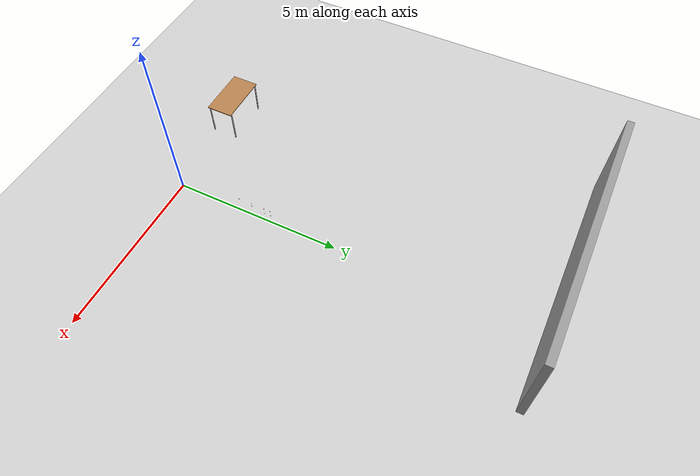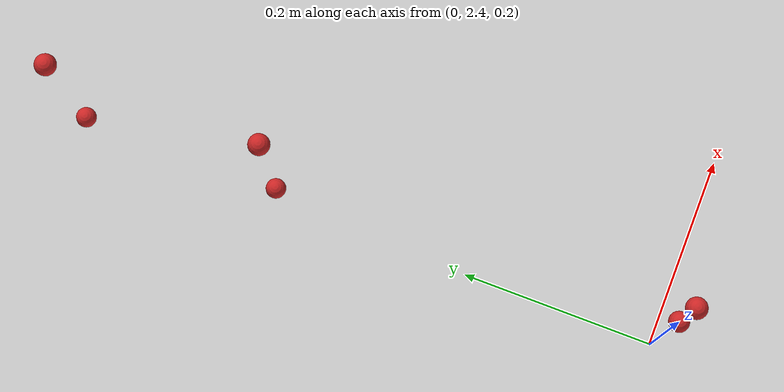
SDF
<sdf version="1.4">
 <world name="default">
  <light name="sun" type="directional">
   <pose>0 0 10 0 -0 0</pose>
   <diffuse>0.8 0.8 0.8 1</diffuse>
   <specular>0.2 0.2 0.2 1</specular>
   <attenuation>
    <range>1000</range>
    <constant>0.9</constant>
    <linear>0.01</linear>
    <quadratic>0.001</quadratic>
   </attenuation>
   <direction>-0.5 0.1 -0.9</direction>
  </light>
  <model name="ground_plane">
   <static>1</static>
   <link name="link">
    <collision name="collision">
     <geometry><plane><normal>0 0 1</normal><size>100 100</size></plane></geometry>
     <surface><friction><ode><mu>100</mu><mu2>50</mu2></ode></friction></surface>
    </collision>
    <visual name="visual">
     <cast_shadows>0</cast_shadows>
     <geometry><plane><normal>0 0 1</normal><size>100 100</size></plane></geometry>
     <material>
      <script><uri>file://media/materials/scripts/gazebo.material</uri><name>Gazebo/Grey</name></script>
     </material>
    </visual>
    <velocity_decay><linear>0</linear><angular>0</angular></velocity_decay>
   </link>
  </model>
  <physics type="ode">
   <max_step_size>0.001</max_step_size>
   <real_time_factor>1</real_time_factor>
   <real_time_update_rate>1000</real_time_update_rate>
   <gravity>0 0 -9.8</gravity>
  </physics>
  <scene><ambient>0.4 0.4 0.4 1</ambient><background>0.7 0.7 0.7 1</background><shadows>1</shadows></scene>
  <spherical_coordinates>
   <surface_model>EARTH_WGS84</surface_model>
   <latitude_deg>0</latitude_deg>
   <longitude_deg>0</longitude_deg>
   <elevation>0</elevation>
   <heading_deg>0</heading_deg>
  </spherical_coordinates>
  <model name="apple">
   <link name="base_link">
    <inertial>
     <mass>1</mass>
     <inertia><ixx>1</ixx><ixy>0</ixy><ixz>0</ixz><iyy>1</iyy><iyz>0</iyz><izz>1</izz></inertia>
    </inertial>
    <collision name="base_link_collision"><geometry><sphere><radius>0.01</radius></sphere></geometry></collision>
    <visual name="base_link_visual">
     <geometry><sphere><radius>0.01</radius></sphere></geometry>
     <material><script><name>Gazebo/Red</name><uri>__default__</uri></script></material>
    </visual>
    <velocity_decay><linear>0</linear><angular>0</angular></velocity_decay>
    <gravity>0</gravity>
    <velocity_decay><linear>0</linear><angular>0</angular></velocity_decay>
   </link>
   <pose>0 3 0.5 0 -0 0</pose>
   <static>0</static>
  </model>
  <model name="apple2">
   <link name="base_link">
    <inertial>
     <mass>1</mass>
     <inertia><ixx>1</ixx><ixy>0</ixy><ixz>0</ixz><iyy>1</iyy><iyz>0</iyz><izz>1</izz></inertia>
    </inertial>
    <collision name="base_link_collision"><geometry><sphere><radius>0.01</radius></sphere></geometry></collision>
    <visual name="base_link_visual">
     <geometry><sphere><radius>0.01</radius></sphere></geometry>
     <material><script><name>Gazebo/Red</name><uri>__default__</uri></script></material>
    </visual>
    <velocity_decay><linear>0</linear><angular>0</angular></velocity_decay>
    <gravity>0</gravity>
    <velocity_decay><linear>0</linear><angular>0</angular></velocity_decay>
   </link>
   <pose>0 3 0.3 0 -0 0</pose>
   <static>0</static>
  </model>
  <model name="apple3">
   <link name="base_link">
    <inertial>
     <mass>1</mass>
     <inertia><ixx>1</ixx><ixy>0</ixy><ixz>0</ixz><iyy>1</iyy><iyz>0</iyz><izz>1</izz></inertia>
    </inertial>
    <collision name="base_link_collision"><geometry><sphere><radius>0.01</radius></sphere></geometry></collision>
    <visual name="base_link_visual">
     <geometry><sphere><radius>0.01</radius></sphere></geometry>
     <material><script><name>Gazebo/Red</name><uri>__default__</uri></script></material>
    </visual>
    <velocity_decay><linear>0</linear><angular>0</angular></velocity_decay>
    <gravity>0</gravity>
    <velocity_decay><linear>0</linear><angular>0</angular></velocity_decay>
   </link>
   <pose>0 2.8 0.3 0 -0 0</pose>
   <static>0</static>
  </model>
  <model name="apple4">
   <link name="base_link">
    <inertial>
     <mass>1</mass>
     <inertia><ixx>1</ixx><ixy>0</ixy><ixz>0</ixz><iyy>1</iyy><iyz>0</iyz><izz>1</izz></inertia>
    </inertial>
    <collision name="base_link_collision"><geometry><sphere><radius>0.01</radius></sphere></geometry></collision>
    <visual name="base_link_visual">
     <geometry><sphere><radius>0.01</radius></sphere></geometry>
     <material><script><name>Gazebo/Red</name><uri>__default__</uri></script></material>
    </visual>
    <velocity_decay><linear>0</linear><angular>0</angular></velocity_decay>
    <gravity>0</gravity>
    <velocity_decay><linear>0</linear><angular>0</angular></velocity_decay>
   </link>
   <pose>0 2.8 0.5 0 -0 0</pose>
   <static>0</static>
  </model>
  <model name="apple5">
   <link name="base_link">
    <inertial>
     <mass>1</mass>
     <inertia><ixx>1</ixx><ixy>0</ixy><ixz>0</ixz><iyy>1</iyy><iyz>0</iyz><izz>1</izz></inertia>
    </inertial>
    <collision name="base_link_collision"><geometry><sphere><radius>0.01</radius></sphere></geometry></collision>
    <visual name="base_link_visual">
     <geometry><sphere><radius>0.01</radius></sphere></geometry>
     <material><script><name>Gazebo/Red</name><uri>__default__</uri></script></material>
    </visual>
    <velocity_decay><linear>0</linear><angular>0</angular></velocity_decay>
    <gravity>0</gravity>
    <velocity_decay><linear>0</linear><angular>0</angular></velocity_decay>
   </link>
   <pose>0 2 0.5 0 -0 0</pose>
   <static>0</static>
  </model>
  <model name="apple6">
   <link name="base_link">
    <inertial>
     <mass>1</mass>
     <inertia><ixx>1</ixx><ixy>0</ixy><ixz>0</ixz><iyy>1</iyy><iyz>0</iyz><izz>1</izz></inertia>
    </inertial>
    <collision name="base_link_collision"><geometry><sphere><radius>0.01</radius></sphere></geometry></collision>
    <visual name="base_link_visual">
     <geometry><sphere><radius>0.01</radius></sphere></geometry>
     <material><script><name>Gazebo/Red</name><uri>__default__</uri></script></material>
    </visual>
    <velocity_decay><linear>0</linear><angular>0</angular></velocity_decay>
    <gravity>0</gravity>
    <velocity_decay><linear>0</linear><angular>0</angular></velocity_decay>
   </link>
   <pose>0 2.4 0.5 0 -0 0</pose>
   <static>0</static>
  </model>
  <model name="apple7">
   <link name="base_link">
    <inertial>
     <mass>1</mass>
     <inertia><ixx>1</ixx><ixy>0</ixy><ixz>0</ixz><iyy>1</iyy><iyz>0</iyz><izz>1</izz></inertia>
    </inertial>
    <collision name="base_link_collision"><geometry><sphere><radius>0.01</radius></sphere></geometry></collision>
    <visual name="base_link_visual">
     <geometry><sphere><radius>0.01</radius></sphere></geometry>
     <material><script><name>Gazebo/Red</name><uri>__default__</uri></script></material>
    </visual>
    <velocity_decay><linear>0</linear><angular>0</angular></velocity_decay>
    <gravity>0</gravity>
    <velocity_decay><linear>0</linear><angular>0</angular></velocity_decay>
   </link>
   <pose>0 2.4 0.4 0 -0 0</pose>
   <static>0</static>
  </model>
  <model name="table">
   <static>1</static>
   <link name="link">
    <collision name="surface">
     <pose>0 0 1 0 -0 0</pose>
     <geometry><box><size>1.5 0.8 0.03</size></box></geometry>
     <surface><friction><ode><mu>0.6</mu><mu2>0.6</mu2></ode></friction></surface>
    </collision>
    <visual name="visual1">
     <pose>0 0 1 0 -0 0</pose>
     <geometry><box><size>1.5 0.8 0.03</size></box></geometry>
     <material>
      <script><uri>file://media/materials/scripts/gazebo.material</uri><name>Gazebo/Wood</name></script>
     </material>
    </visual>
    <collision name="front_left_leg">
     <pose>0.68 0.38 0.5 0 -0 0</pose>
     <geometry><cylinder><radius>0.02</radius><length>1</length></cylinder></geometry>
    </collision>
    <visual name="front_left_leg">
     <pose>0.68 0.38 0.5 0 -0 0</pose>
     <geometry><cylinder><radius>0.02</radius><length>1</length></cylinder></geometry>
     <material>
      <script><uri>file://media/materials/scripts/gazebo.material</uri><name>Gazebo/Grey</name></script>
     </material>
    </visual>
    <collision name="front_right_leg">
     <pose>0.68 -0.38 0.5 0 -0 0</pose>
     <geometry><cylinder><radius>0.02</radius><length>1</length></cylinder></geometry>
    </collision>
    <visual name="front_right_leg">
     <pose>0.68 -0.38 0.5 0 -0 0</pose>
     <geometry><cylinder><radius>0.02</radius><length>1</length></cylinder></geometry>
     <material>
      <script><uri>file://media/materials/scripts/gazebo.material</uri><name>Gazebo/Grey</name></script>
     </material>
    </visual>
    <collision name="back_right_leg">
     <pose>-0.68 -0.38 0.5 0 -0 0</pose>
     <geometry><cylinder><radius>0.02</radius><length>1</length></cylinder></geometry>
    </collision>
    <visual name="back_right_leg">
     <pose>-0.68 -0.38 0.5 0 -0 0</pose>
     <geometry><cylinder><radius>0.02</radius><length>1</length></cylinder></geometry>
     <material>
      <script><uri>file://media/materials/scripts/gazebo.material</uri><name>Gazebo/Grey</name></script>
     </material>
    </visual>
    <collision name="back_left_leg">
     <pose>-0.68 0.38 0.5 0 -0 0</pose>
     <geometry><cylinder><radius>0.02</radius><length>1</length></cylinder></geometry>
    </collision>
    <visual name="back_left_leg">
     <pose>-0.68 0.38 0.5 0 -0 0</pose>
     <geometry><cylinder><radius>0.02</radius><length>1</length></cylinder></geometry>
     <material>
      <script><uri>file://media/materials/scripts/gazebo.material</uri><name>Gazebo/Grey</name></script>
     </material>
    </visual>
    <velocity_decay><linear>0</linear><angular>0</angular></velocity_decay>
   </link>
   <pose>-3 0 0 0 -0 0</pose>
  </model>
  <model name="grey_wall">
   <static>1</static>
   <link name="link">
    <pose>0 0 1.4 0 -0 0</pose>
    <collision name="collision"><geometry><box><size>7.5 0.2 2.8</size></box></geometry></collision>
    <visual name="visual">
     <cast_shadows>0</cast_shadows>
     <geometry><box><size>7.5 0.2 2.8</size></box></geometry>
     <material>
      <script>
       <uri>model://grey_wall/materials/scripts</uri>
       <uri>model://grey_wall/materials/textures</uri>
       <name>vrc/grey_wall</name>
      </script>
     </material>
    </visual>
    <velocity_decay><linear>0</linear><angular>0</angular></velocity_decay>
   </link>
   <pose>-1.54682 11 0 0 -0 0</pose>
  </model>
 </world>
</sdf>
